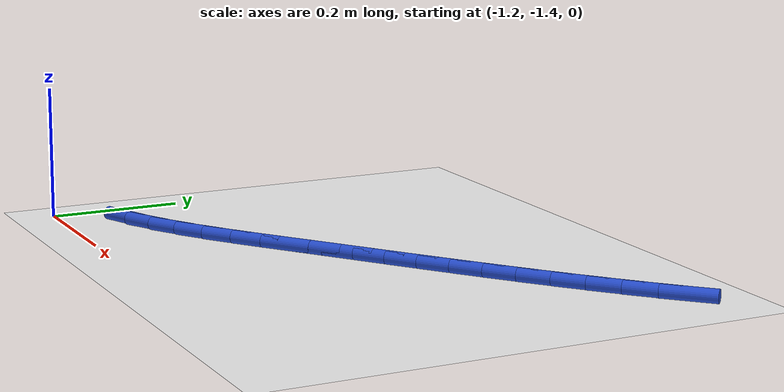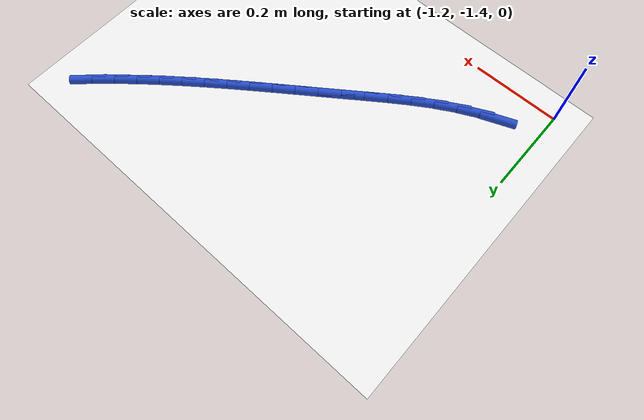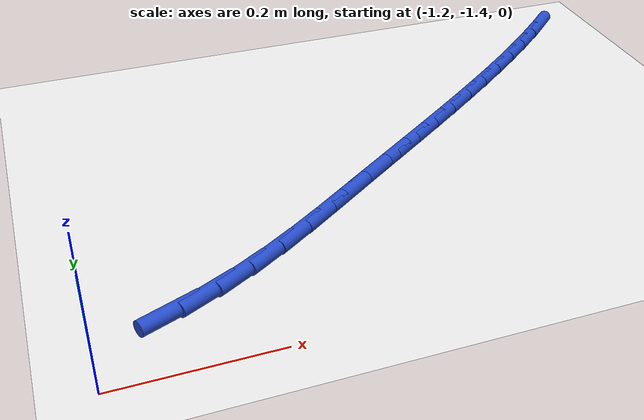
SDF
<sdf version="1.6">
 <world name="default">
  <model name="ground_plane">
   <static>1</static>
   <link name="link">
    <collision name="collision">
     <geometry><plane><normal>0 0 1</normal><size>100 100</size></plane></geometry>
     <surface><friction><ode><mu>100</mu><mu2>50</mu2></ode></friction></surface>
    </collision>
    <visual name="visual">
     <cast_shadows>0</cast_shadows>
     <geometry><plane><normal>0 0 1</normal><size>100 100</size></plane></geometry>
     <material>
      <script><uri>file://media/materials/scripts/gazebo.material</uri><name>Gazebo/WhiteGlow</name></script>
     </material>
    </visual>
   </link>
  </model>
  <model name="line">
   <link name="link_114">
    <pose>-1.1111895012654465 -1.3134381961347188 0.01 0 1.57 0.3883692172094582</pose>
    <collision name="collision">
     <geometry><cylinder><radius>0.01</radius><length>0.08</length></cylinder></geometry>
    </collision>
    <visual name="visual">
     <material>
      <script><name>Gazebo/Blue</name><uri>file://media/materials/scripts/gazebo.material</uri></script>
     </material>
     <geometry><cylinder><radius>0.01</radius><length>0.08</length></cylinder></geometry>
    </visual>
   </link>
   <link name="link_115">
    <pose>-1.065104645832166 -1.2945825839569955 0.01 0 1.57 0.46837997307865487</pose>
    <collision name="collision">
     <geometry><cylinder><radius>0.01</radius><length>0.08</length></cylinder></geometry>
    </collision>
    <visual name="visual">
     <material>
      <script><name>Gazebo/Blue</name><uri>file://media/materials/scripts/gazebo.material</uri></script>
     </material>
     <geometry><cylinder><radius>0.01</radius><length>0.08</length></cylinder></geometry>
    </visual>
   </link>
   <link name="link_116">
    <pose>-1.0205844857294704 -1.2720585202936896 0.01 0 1.57 0.5322390417346073</pose>
    <collision name="collision">
     <geometry><cylinder><radius>0.01</radius><length>0.08</length></cylinder></geometry>
    </collision>
    <visual name="visual">
     <material>
      <script><name>Gazebo/Blue</name><uri>file://media/materials/scripts/gazebo.material</uri></script>
     </material>
     <geometry><cylinder><radius>0.01</radius><length>0.08</length></cylinder></geometry>
    </visual>
   </link>
   <link name="link_117">
    <pose>-0.9773442209645726 -1.2465930886511767 0.01 0 1.57 0.5800333553711371</pose>
    <collision name="collision">
     <geometry><cylinder><radius>0.01</radius><length>0.08</length></cylinder></geometry>
    </collision>
    <visual name="visual">
     <material>
      <script><name>Gazebo/Blue</name><uri>file://media/materials/scripts/gazebo.material</uri></script>
     </material>
     <geometry><cylinder><radius>0.01</radius><length>0.08</length></cylinder></geometry>
    </visual>
   </link>
   <link name="link_118">
    <pose>-0.9350990515446844 -1.218913372535834 0.01 0 1.57 0.6122191460412367</pose>
    <collision name="collision">
     <geometry><cylinder><radius>0.01</radius><length>0.08</length></cylinder></geometry>
    </collision>
    <visual name="visual">
     <material>
      <script><name>Gazebo/Blue</name><uri>file://media/materials/scripts/gazebo.material</uri></script>
     </material>
     <geometry><cylinder><radius>0.01</radius><length>0.08</length></cylinder></geometry>
    </visual>
   </link>
   <link name="link_119">
    <pose>-0.8935641774770194 -1.189746455454039 0.01 0 1.57 0.6292623668229191</pose>
    <collision name="collision">
     <geometry><cylinder><radius>0.01</radius><length>0.08</length></cylinder></geometry>
    </collision>
    <visual name="visual">
     <material>
      <script><name>Gazebo/Blue</name><uri>file://media/materials/scripts/gazebo.material</uri></script>
     </material>
     <geometry><cylinder><radius>0.01</radius><length>0.08</length></cylinder></geometry>
    </visual>
   </link>
   <link name="link_120">
    <pose>-0.8524547987687888 -1.1598194209121664 0.01 0 1.57 0.6319464990322412</pose>
    <collision name="collision">
     <geometry><cylinder><radius>0.01</radius><length>0.08</length></cylinder></geometry>
    </collision>
    <visual name="visual">
     <material>
      <script><name>Gazebo/Blue</name><uri>file://media/materials/scripts/gazebo.material</uri></script>
     </material>
     <geometry><cylinder><radius>0.01</radius><length>0.08</length></cylinder></geometry>
    </visual>
   </link>
   <link name="link_121">
    <pose>-0.8114967524957414 -1.1298340252350039 0.01 0 1.57 0.629313131962351</pose>
    <collision name="collision">
     <geometry><cylinder><radius>0.01</radius><length>0.08</length></cylinder></geometry>
    </collision>
    <visual name="visual">
     <material>
      <script><name>Gazebo/Blue</name><uri>file://media/materials/scripts/gazebo.material</uri></script>
     </material>
     <geometry><cylinder><radius>0.01</radius><length>0.08</length></cylinder></geometry>
    </visual>
   </link>
   <link name="link_122">
    <pose>-0.7705983970620767 -1.1000574359492505 0.01 0 1.57 0.6289606462810874</pose>
    <collision name="collision">
     <geometry><cylinder><radius>0.01</radius><length>0.08</length></cylinder></geometry>
    </collision>
    <visual name="visual">
     <material>
      <script><name>Gazebo/Blue</name><uri>file://media/materials/scripts/gazebo.material</uri></script>
     </material>
     <geometry><cylinder><radius>0.01</radius><length>0.08</length></cylinder></geometry>
    </visual>
   </link>
   <link name="link_123">
    <pose>-0.7298215920731216 -1.0703913295835417 0.01 0 1.57 0.6311502507769075</pose>
    <collision name="collision">
     <geometry><cylinder><radius>0.01</radius><length>0.08</length></cylinder></geometry>
    </collision>
    <visual name="visual">
     <material>
      <script><name>Gazebo/Blue</name><uri>file://media/materials/scripts/gazebo.material</uri></script>
     </material>
     <geometry><cylinder><radius>0.01</radius><length>0.08</length></cylinder></geometry>
    </visual>
   </link>
   <link name="link_124">
    <pose>-0.6892329755690669 -1.0407260050687228 0.01 0 1.57 0.6359036684945484</pose>
    <collision name="collision">
     <geometry><cylinder><radius>0.01</radius><length>0.08</length></cylinder></geometry>
    </collision>
    <visual name="visual">
     <material>
      <script><name>Gazebo/Blue</name><uri>file://media/materials/scripts/gazebo.material</uri></script>
     </material>
     <geometry><cylinder><radius>0.01</radius><length>0.08</length></cylinder></geometry>
    </visual>
   </link>
   <link name="link_125">
    <pose>-0.6488991855901042 -1.010951761335639 0.01 0 1.57 0.6432390574015346</pose>
    <collision name="collision">
     <geometry><cylinder><radius>0.01</radius><length>0.08</length></cylinder></geometry>
    </collision>
    <visual name="visual">
     <material>
      <script><name>Gazebo/Blue</name><uri>file://media/materials/scripts/gazebo.material</uri></script>
     </material>
     <geometry><cylinder><radius>0.01</radius><length>0.08</length></cylinder></geometry>
    </visual>
   </link>
   <link name="link_126">
    <pose>-0.6088868601764224 -0.9809588973151336 0.01 0 1.57 0.6531699678970803</pose>
    <collision name="collision">
     <geometry><cylinder><radius>0.01</radius><length>0.08</length></cylinder></geometry>
    </collision>
    <visual name="visual">
     <material>
      <script><name>Gazebo/Blue</name><uri>file://media/materials/scripts/gazebo.material</uri></script>
     </material>
     <geometry><cylinder><radius>0.01</radius><length>0.08</length></cylinder></geometry>
    </visual>
   </link>
   <link name="link_127">
    <pose>-0.5692626373682134 -0.950637711938053 0.01 0 1.57 0.665703771987934</pose>
    <collision name="collision">
     <geometry><cylinder><radius>0.01</radius><length>0.08</length></cylinder></geometry>
    </collision>
    <visual name="visual">
     <material>
      <script><name>Gazebo/Blue</name><uri>file://media/materials/scripts/gazebo.material</uri></script>
     </material>
     <geometry><cylinder><radius>0.01</radius><length>0.08</length></cylinder></geometry>
    </visual>
   </link>
   <link name="link_128">
    <pose>-0.530093155205666 -0.9198785041352401 0.01 0 1.57 0.6808395675889511</pose>
    <collision name="collision">
     <geometry><cylinder><radius>0.01</radius><length>0.08</length></cylinder></geometry>
    </collision>
    <visual name="visual">
     <material>
      <script><name>Gazebo/Blue</name><uri>file://media/materials/scripts/gazebo.material</uri></script>
     </material>
     <geometry><cylinder><radius>0.01</radius><length>0.08</length></cylinder></geometry>
    </visual>
   </link>
   <link name="link_129">
    <pose>-0.49144505172897174 -0.8885715728375401 0.01 0 1.57 0.6985655866216596</pose>
    <collision name="collision">
     <geometry><cylinder><radius>0.01</radius><length>0.08</length></cylinder></geometry>
    </collision>
    <visual name="visual">
     <material>
      <script><name>Gazebo/Blue</name><uri>file://media/materials/scripts/gazebo.material</uri></script>
     </material>
     <geometry><cylinder><radius>0.01</radius><length>0.08</length></cylinder></geometry>
    </visual>
   </link>
   <link name="link_130">
    <pose>-0.45338496497832126 -0.8566072169757981 0.01 0 1.57 0.7188561711116263</pose>
    <collision name="collision">
     <geometry><cylinder><radius>0.01</radius><length>0.08</length></cylinder></geometry>
    </collision>
    <visual name="visual">
     <material>
      <script><name>Gazebo/Blue</name><uri>file://media/materials/scripts/gazebo.material</uri></script>
     </material>
     <geometry><cylinder><radius>0.01</radius><length>0.08</length></cylinder></geometry>
    </visual>
   </link>
   <link name="link_131">
    <pose>-0.4159795329939042 -0.823875735480858 0.01 0 1.57 0.7416684282863337</pose>
    <collision name="collision">
     <geometry><cylinder><radius>0.01</radius><length>0.08</length></cylinder></geometry>
    </collision>
    <visual name="visual">
     <material>
      <script><name>Gazebo/Blue</name><uri>file://media/materials/scripts/gazebo.material</uri></script>
     </material>
     <geometry><cylinder><radius>0.01</radius><length>0.08</length></cylinder></geometry>
    </visual>
   </link>
   <link name="link_132">
    <pose>-0.37929539381591193 -0.790267427283565 0.01 0 1.57 0.7669387327325495</pose>
    <collision name="collision">
     <geometry><cylinder><radius>0.01</radius><length>0.08</length></cylinder></geometry>
    </collision>
    <visual name="visual">
     <material>
      <script><name>Gazebo/Blue</name><uri>file://media/materials/scripts/gazebo.material</uri></script>
     </material>
     <geometry><cylinder><radius>0.01</radius><length>0.08</length></cylinder></geometry>
    </visual>
   </link>
  </model>
 </world>
</sdf>
